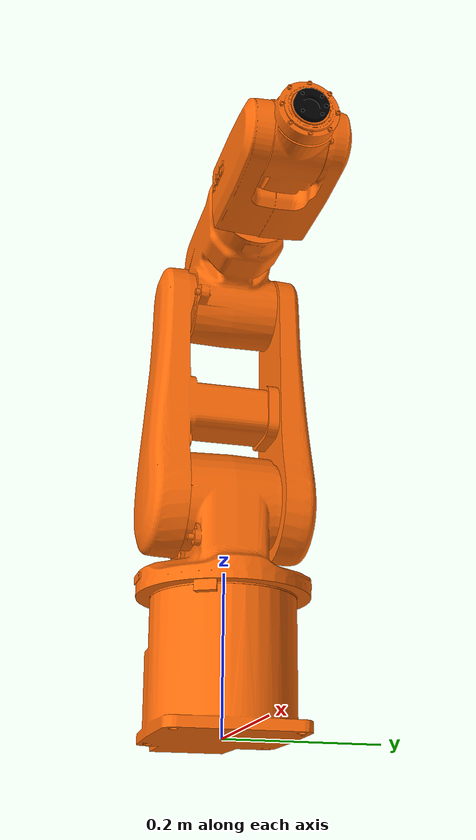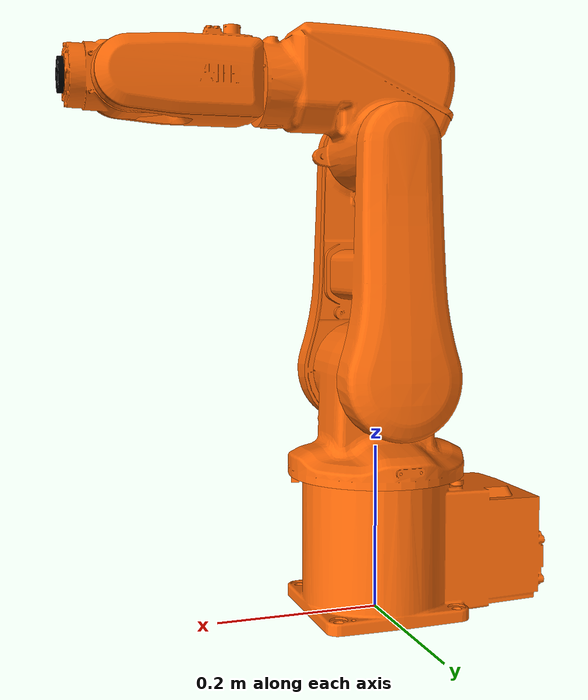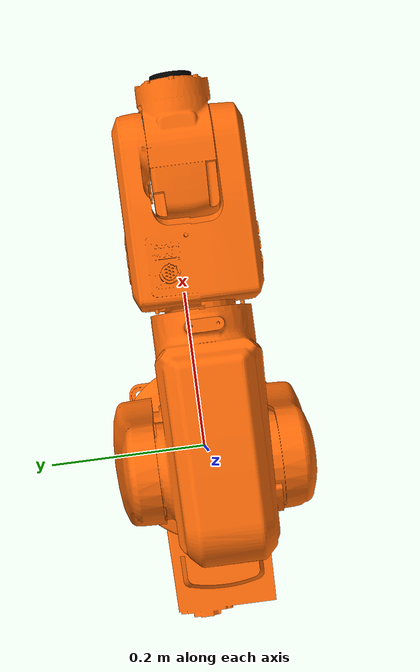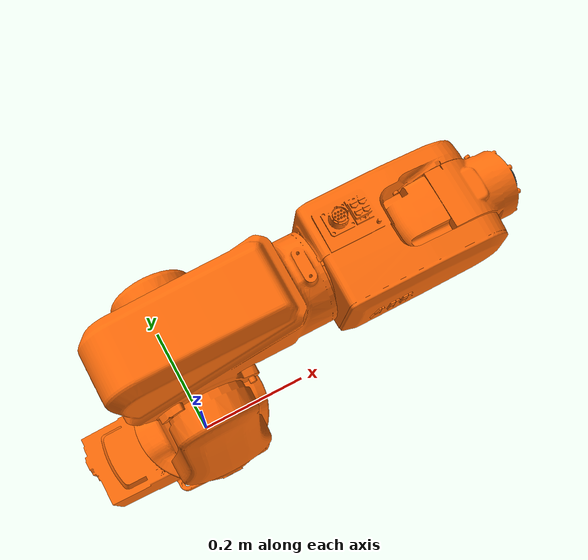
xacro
<?xml version="1.0" ?>

<robot name="abb_irb120" xmlns:xacro="http://ros.org/wiki/xacro">
	<xacro:property name="pi" value="3.1415926535897931" />

	<xacro:include filename="$(find abb_irb120_gazebo)/urdf/irb120_macro.xacro"/>
	<xacro:include filename="$(find abb_irb120_gazebo)/urdf/irb120.gazebo" />
	<xacro:include filename="$(find abb_irb120_gazebo)/urdf/materials.xacro" />
	<xacro:include filename="$(find abb_irb120_gazebo)/urdf/irb120_transmission.xacro"/>

	<xacro:abb_irb120 prefix=""/>
	<xacro:abb_irb120_transmission prefix=""/>

	<!-- Used for fixing robot to Gazebo world -->
	<link name="world"/>
	<joint name="fixed" type="fixed">
	  <parent link="world"/>
	  <child link="base_link"/>
	</joint>

</robot>

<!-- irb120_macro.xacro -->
<robot xmlns:xacro="http://ros.org/wiki/xacro">
	<xacro:macro name="abb_irb120" params="prefix">
		<!-- link list -->
		<link name="${prefix}base_link">
			<inertial>
				<origin xyz="0 0 0" rpy="0 0 0"/>
				<mass value="6.215"/>
				<inertia ixx="0.001" ixy="0.0" ixz="0.0" iyy="0.001" iyz="0.0" izz="0.001"/>
			</inertial>
			<visual>
				<origin xyz="0 0 0" rpy="0 0 0"/>
				<geometry>
					<mesh filename="package://abb_irb120_support/meshes/irb120/visual/base_link.stl"/>
				</geometry>
				<material name="orange"/>
			</visual>
			<collision>
				<geometry>
					<mesh filename="package://abb_irb120_support/meshes/irb120/collision/base_link.stl"/>
				</geometry>
			</collision>
		</link>
		<link name="${prefix}link_1">
			<inertial>
				<origin xyz="0 0 0" rpy="0 0 0"/>
				<mass value="3.067" />
				<inertia ixx="0.001" ixy="0.0" ixz="0.0" iyy="0.001" iyz="0.0" izz="0.001"/>
			</inertial>
			<visual>
				<origin xyz="0 0 0" rpy="0 0 0"/>
				<geometry>
					<mesh filename="package://abb_irb120_support/meshes/irb120/visual/link_1.stl"/>
				</geometry>
				<material name="orange"/>
			</visual>
			<collision>
				<origin xyz="0 0 0" rpy="0 0 0"/>
				<geometry>
					<mesh filename="package://abb_irb120_support/meshes/irb120/collision/link_1.stl"/>
				</geometry>
			</collision>
		</link>
		<link name="${prefix}link_2">
			<inertial>
				<origin xyz="0 0 0" rpy="0 0 0"/>
				<mass value="3.9087"/>
				<inertia ixx="0.001" ixy="0.0" ixz="0.0" iyy="0.001" iyz="0.0" izz="0.001"/>
			</inertial>
			<visual>
				<origin xyz="0 0 0" rpy="0 0 0"/>
				<geometry>
					<mesh filename="package://abb_irb120_support/meshes/irb120/visual/link_2.stl"/>
				</geometry>
				<material name="orange"/>
			</visual>
			<collision>
				<origin xyz="0 0 0" rpy="0 0 0"/>
				<geometry>
					<mesh filename="package://abb_irb120_support/meshes/irb120/collision/link_2.stl"/>
				</geometry>
			</collision>
		</link>
		<link name="${prefix}link_3">
			<inertial>
				<origin xyz="0 0 0" rpy="0 0 0"/>
				<mass value="2.9437"/>
				<inertia ixx="0.001" ixy="0.0" ixz="0.0" iyy="0.001" iyz="0.0" izz="0.001"/>
			</inertial>
			<visual>
				<origin xyz="0 0 0" rpy="0 0 0"/>
				<geometry>
					<mesh filename="package://abb_irb120_support/meshes/irb120/visual/link_3.stl"/>
				</geometry>
				<material name="orange"/>
			</visual>
			<collision>
				<origin xyz="0 0 0" rpy="0 0 0"/>
				<geometry>
					<mesh filename="package://abb_irb120_support/meshes/irb120/collision/link_3.stl"/>
				</geometry>
			</collision>
		</link>
		<link name="${prefix}link_4">
			<inertial>
				<origin xyz="0 0 0" rpy="0 0 0"/>
				<mass value="1.3279"/>
				<inertia ixx="0.001" ixy="0.0" ixz="0.0" iyy="0.001" iyz="0.0" izz="0.001"/>
			</inertial>
			<visual>
				<origin xyz="0 0 0" rpy="0 0 0"/>
				<geometry>
					<mesh filename="package://abb_irb120_support/meshes/irb120/visual/link_4.stl"/>
				</geometry>
				<material name="orange"/>
			</visual>
			<collision>
				<origin xyz="0 0 0" rpy="0 0 0"/>
				<geometry>
					<mesh filename="package://abb_irb120_support/meshes/irb120/collision/link_4.stl"/>
				</geometry>
			</collision>
			</link>
		<link name="${prefix}link_5">
			<inertial>
				<origin xyz="0 0 0" rpy="0 0 0"/>
				<mass value="0.54663"/>
				<inertia ixx="0.001" ixy="0.0" ixz="0.0" iyy="0.001" iyz="0.0" izz="0.001"/>
			</inertial>
			<visual>
				<origin xyz="0 0 0" rpy="0 0 0"/>
				<geometry>
					<mesh filename="package://abb_irb120_support/meshes/irb120/visual/link_5.stl"/>
				</geometry>
				<material name="orange"/>
			</visual>
			<collision>
				<origin xyz="0 0 0" rpy="0 0 0"/>
				<geometry>
					<mesh filename="package://abb_irb120_support/meshes/irb120/collision/link_5.stl"/>
				</geometry>
			</collision>
		</link>
		<link name="${prefix}link_6">
			<inertial>
				<origin xyz="0 0 0" rpy="0 0 0"/>
				<mass value="0.013678"/>
				<inertia ixx="0.001" ixy="0.0" ixz="0.0" iyy="0.001" iyz="0.0" izz="0.001"/>
			</inertial>
			<visual>
				<origin xyz="0 0 0" rpy="0 0 0"/>
				<geometry>
					<mesh filename="package://abb_irb120_support/meshes/irb120/visual/link_6.stl"/>
				</geometry>
				<material name="black">
					<color rgba="0 0 0 1"/>
				</material>
			</visual>
			<collision>
				<origin xyz="0 0 0" rpy="0 0 0"/>
				<geometry>
					<mesh filename="package://abb_irb120_support/meshes/irb120/collision/link_6.stl"/>
				</geometry>
			</collision>
		</link>
		<!-- end of link list -->

		<!-- joint list -->
		<joint name="${prefix}joint_1" type="revolute">
			<origin rpy="0 0 0" xyz="0 0 0"/>
			<parent link="${prefix}base_link"/>
			<child link="${prefix}link_1"/>
			<limit effort="30" lower="-2.87979" upper="2.87979" velocity="4.36332"/>
			<axis xyz="0 0 1"/>
			<dynamics damping="0.5" friction="0.0"/>
		</joint>
		<joint name="${prefix}joint_2" type="revolute">
			<origin rpy="0 0 0" xyz="0 0.00075 0.29"/>
			<parent link="${prefix}link_1"/>
			<child link="${prefix}link_2"/>
			<limit effort="30" lower="-1.91986" upper="1.91986" velocity="4.36332"/>
			<axis xyz="0 1 0"/>
			<dynamics damping="0.5" friction="0.0"/>
		</joint>
		<joint name="${prefix}joint_3" type="revolute">
			<origin rpy="0 0 0" xyz="0 0.004 0.27"/>
			<parent link="${prefix}link_2"/>
			<child link="${prefix}link_3"/>
			<limit effort="30" lower="-1.91986" upper="1.22173" velocity="4.36332"/>
			<axis xyz="0 1 0"/>
			<dynamics damping="0.5" friction="0.0"/>
		</joint>
		<joint name="${prefix}joint_4" type="revolute">
			<origin rpy="0 0 0" xyz="0.1496 -0.00475 0.07"/>
			<parent link="${prefix}link_3"/>
			<child link="${prefix}link_4"/>
			<limit effort="30" lower="-2.79253" upper="2.79253" velocity="5.58505"/>
			<axis xyz="1 0 0"/>
			<dynamics damping="0.5" friction="0.0"/>
		</joint>
		<joint name="${prefix}joint_5" type="revolute">
			<origin rpy="0 0 0" xyz="0.1524 0 0"/>
			<parent link="${prefix}link_4"/>
			<child link="${prefix}link_5"/>
			<limit effort="30" lower="-2.094395" upper="2.094395" velocity="5.58505"/>
			<axis xyz="0 1 0"/>
			<dynamics damping="0.5" friction="0.0"/>
		</joint>
		<joint name="${prefix}joint_6" type="revolute">
			<origin rpy="0 0 0" xyz="0.066 0 0"/>
			<parent link="${prefix}link_5"/>
			<child link="${prefix}link_6"/>
			<limit effort="30" lower="-6.98132" upper="6.98132" velocity="7.33038"/>
			<axis xyz="1 0 0"/>
			<dynamics damping="0.5" friction="0.0"/>
		</joint>
		<!-- end of joint list -->
	</xacro:macro>
</robot>

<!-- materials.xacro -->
<robot name="irb120" xmlns:xacro="http://ros.org/wiki/xacro">
	<material name="black">
	  <color rgba="0.0 0.0 0.0 1.0"/>
	</material>

	<material name="blue">
	  <color rgba="0.0 0.0 0.8 1.0"/>
	</material>

	<material name="green">
	  <color rgba="0.0 0.8 0.0 1.0"/>
	</material>

	<material name="grey">
	  <color rgba="0.2 0.2 0.2 1.0"/>
	</material>

	<material name="orange">
	  <color rgba="${255/255} ${108/255} ${10/255} 1.0"/>
	</material>

	<material name="abb_orange">
	  <color rgba="1.0 0.43 0.0 1.0"/>
	</material>

	<material name="yellow">
	  <color rgba="0.0 1.0 1.0 1.0"/>
	</material>

	<material name="brown">
	  <color rgba="${222/255} ${207/255} ${195/255} 1.0"/>
	</material>

	<material name="red">
	  <color rgba="0.8 0.0 0.0 1.0"/>
	</material>

	<material name="white">
	  <color rgba="1.0 1.0 1.0 1.0"/>
	</material>
</robot>
